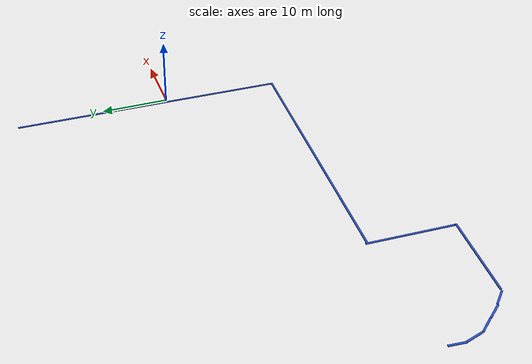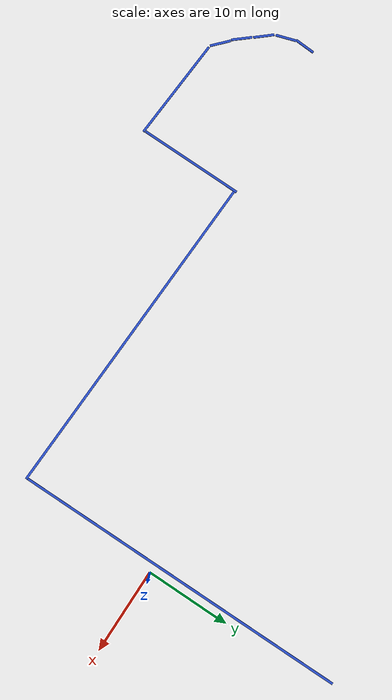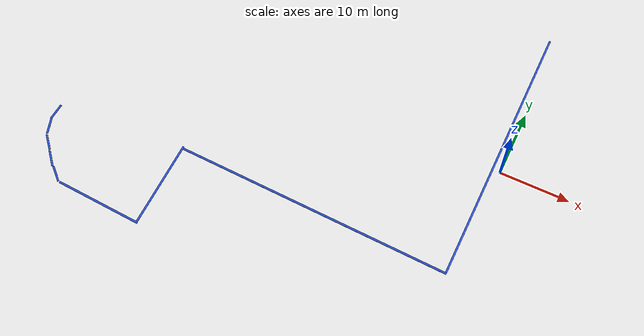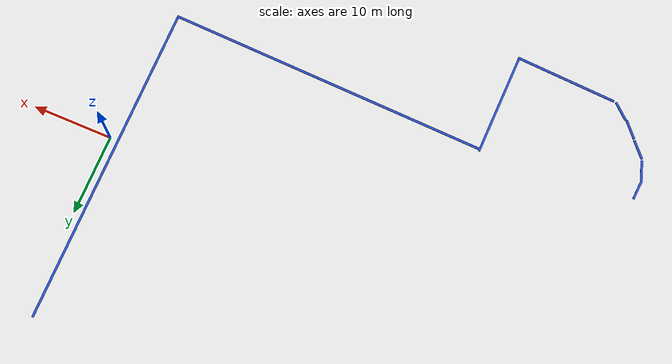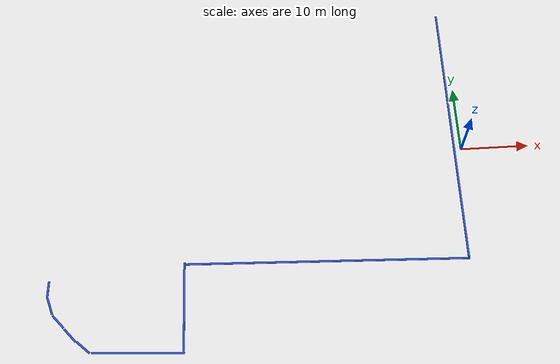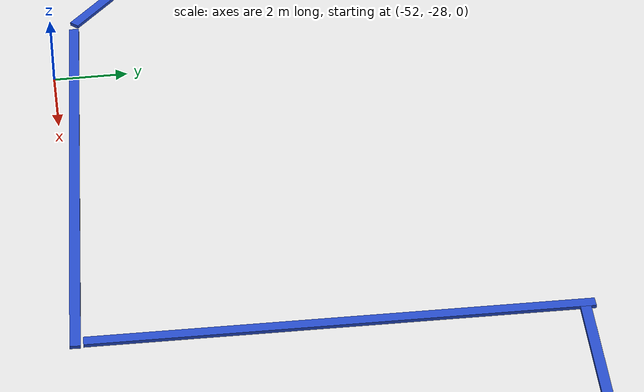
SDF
<?xml version='1.0'?>
<sdf version='1.6'>
  <model name='blue_line'>
    <link name='link_0'>
      <pose frame=''>-1.09049 3.04456 0.467976 1e-06 1e-06 2e-06</pose>
      <inertial>
        <mass>0.993179</mass>
        <inertia>
          <ixx>131.321</ixx>
          <ixy>0</ixy>
          <ixz>0</ixz>
          <iyy>0.0066551</iyy>
          <iyz>0</iyz>
          <izz>131.326</izz>
        </inertia>
        <pose frame=''>0 0 0 0 -0 0</pose>
      </inertial>
      <self_collide>0</self_collide>
      <kinematic>0</kinematic>
      <visual name='visual'>
        <pose frame=''>0 0 0 0 -0 0</pose>
        <geometry>
          <box>
            <size>0.267837 39.8329 0.092933</size>
          </box>
        </geometry>
        <material>
          <lighting>1</lighting>
          <script>
            <uri>file://media/materials/scripts/gazebo.material</uri>
            <name>Gazebo/Blue</name>
          </script>
          <ambient>0 0 1 1</ambient>
          <diffuse>0 0 1 1</diffuse>
          <specular>0.01 0.01 0.01 1</specular>
          <emissive>0 0 0 1</emissive>
          <shader type='pixel'>
            <normal_map>__default__</normal_map>
          </shader>
        </material>
        <cast_shadows>1</cast_shadows>
        <transparency>0</transparency>
      </visual>
      <collision name='collision'>
        <laser_retro>0</laser_retro>
        <max_contacts>10</max_contacts>
        <pose frame=''>0 0 0 0 -0 0</pose>
        <geometry>
          <box>
            <size>0.267837 39.8329 0.092933</size>
          </box>
        </geometry>
        <surface>
          <friction>
            <ode>
              <mu>1</mu>
              <mu2>1</mu2>
              <fdir1>0 0 0</fdir1>
              <slip1>0</slip1>
              <slip2>0</slip2>
            </ode>
            <torsional>
              <coefficient>1</coefficient>
              <patch_radius>0</patch_radius>
              <surface_radius>0</surface_radius>
              <use_patch_radius>1</use_patch_radius>
              <ode>
                <slip>0</slip>
              </ode>
            </torsional>
          </friction>
          <bounce>
            <restitution_coefficient>0</restitution_coefficient>
            <threshold>1e+06</threshold>
          </bounce>
          <contact>
            <collide_without_contact>0</collide_without_contact>
            <collide_without_contact_bitmask>1</collide_without_contact_bitmask>
            <collide_bitmask>1</collide_bitmask>
            <ode>
              <soft_cfm>0</soft_cfm>
              <soft_erp>0.2</soft_erp>
              <kp>1e+13</kp>
              <kd>1</kd>
              <max_vel>0.01</max_vel>
              <min_depth>0</min_depth>
            </ode>
            <bullet>
              <split_impulse>1</split_impulse>
              <split_impulse_penetration_threshold>-0.01</split_impulse_penetration_threshold>
              <soft_cfm>0</soft_cfm>
              <soft_erp>0.2</soft_erp>
              <kp>1e+13</kp>
              <kd>1</kd>
            </bullet>
          </contact>
        </surface>
      </collision>
    </link>
    <link name='link_0_clone'>
      <pose frame=''>-20.8753 -16.2989 0.467985 2e-06 -2e-06 1.53462</pose>
      <inertial>
        <mass>0.993179</mass>
        <inertia>
          <ixx>131.321</ixx>
          <ixy>0</ixy>
          <ixz>0</ixz>
          <iyy>0.0066551</iyy>
          <iyz>0</iyz>
          <izz>131.326</izz>
        </inertia>
        <pose frame=''>0 0 0 0 -0 0</pose>
      </inertial>
      <self_collide>0</self_collide>
      <kinematic>0</kinematic>
      <visual name='visual'>
        <pose frame=''>0 0 0 0 -0 0</pose>
        <geometry>
          <box>
            <size>0.267837 39.8329 0.092933</size>
          </box>
        </geometry>
        <material>
          <lighting>1</lighting>
          <script>
            <uri>file://media/materials/scripts/gazebo.material</uri>
            <name>Gazebo/Blue</name>
          </script>
          <ambient>0 0 1 1</ambient>
          <diffuse>0 0 1 1</diffuse>
          <specular>0.01 0.01 0.01 1</specular>
          <emissive>0 0 0 1</emissive>
          <shader type='vertex'>
            <normal_map>__default__</normal_map>
          </shader>
        </material>
        <cast_shadows>1</cast_shadows>
        <transparency>0</transparency>
      </visual>
      <collision name='collision'>
        <laser_retro>0</laser_retro>
        <max_contacts>10</max_contacts>
        <pose frame=''>0 0 0 0 -0 0</pose>
        <geometry>
          <box>
            <size>0.267837 39.8329 0.092933</size>
          </box>
        </geometry>
        <surface>
          <friction>
            <ode>
              <mu>1</mu>
              <mu2>1</mu2>
              <fdir1>0 0 0</fdir1>
              <slip1>0</slip1>
              <slip2>0</slip2>
            </ode>
            <torsional>
              <coefficient>1</coefficient>
              <patch_radius>0</patch_radius>
              <surface_radius>0</surface_radius>
              <use_patch_radius>1</use_patch_radius>
              <ode>
                <slip>0</slip>
              </ode>
            </torsional>
          </friction>
          <bounce>
            <restitution_coefficient>0</restitution_coefficient>
            <threshold>1e+06</threshold>
          </bounce>
          <contact>
            <collide_without_contact>0</collide_without_contact>
            <collide_without_contact_bitmask>1</collide_without_contact_bitmask>
            <collide_bitmask>1</collide_bitmask>
            <ode>
              <soft_cfm>0</soft_cfm>
              <soft_erp>0.2</soft_erp>
              <kp>1e+13</kp>
              <kd>1</kd>
              <max_vel>0.01</max_vel>
              <min_depth>0</min_depth>
            </ode>
            <bullet>
              <split_impulse>1</split_impulse>
              <split_impulse_penetration_threshold>-0.01</split_impulse_penetration_threshold>
              <soft_cfm>0</soft_cfm>
              <soft_erp>0.2</soft_erp>
              <kp>1e+13</kp>
              <kd>1</kd>
            </bullet>
          </contact>
        </surface>
      </collision>
    </link>
    <link name='link_0_clone_clone'>
      <pose frame=''>-41.0206 -21.5954 0.468021 -3e-06 -3e-06 3.12356</pose>
      <inertial>
        <mass>0.313472</mass>
        <inertia>
          <ixx>4.12928</ixx>
          <ixy>0</ixy>
          <ixz>0</ixz>
          <iyy>0.00210052</iyy>
          <iyz>0</iyz>
          <izz>4.13086</izz>
        </inertia>
        <pose frame=''>0 0 0 0 -0 0</pose>
      </inertial>
      <self_collide>0</self_collide>
      <kinematic>0</kinematic>
      <visual name='visual'>
        <pose frame=''>0 0 0 0 -0 0</pose>
        <geometry>
          <box>
            <size>0.267837 12.5723 0.092933</size>
          </box>
        </geometry>
        <material>
          <lighting>1</lighting>
          <script>
            <uri>file://media/materials/scripts/gazebo.material</uri>
            <name>Gazebo/Blue</name>
          </script>
          <ambient>0 0 1 1</ambient>
          <diffuse>0 0 1 1</diffuse>
          <specular>0.01 0.01 0.01 1</specular>
          <emissive>0 0 0 1</emissive>
          <shader type='vertex'>
            <normal_map>__default__</normal_map>
          </shader>
        </material>
        <cast_shadows>1</cast_shadows>
        <transparency>0</transparency>
      </visual>
      <collision name='collision'>
        <laser_retro>0</laser_retro>
        <max_contacts>10</max_contacts>
        <pose frame=''>0 0 0 0 -0 0</pose>
        <geometry>
          <box>
            <size>0.267837 12.5723 0.092933</size>
          </box>
        </geometry>
        <surface>
          <friction>
            <ode>
              <mu>1</mu>
              <mu2>1</mu2>
              <fdir1>0 0 0</fdir1>
              <slip1>0</slip1>
              <slip2>0</slip2>
            </ode>
            <torsional>
              <coefficient>1</coefficient>
              <patch_radius>0</patch_radius>
              <surface_radius>0</surface_radius>
              <use_patch_radius>1</use_patch_radius>
              <ode>
                <slip>0</slip>
              </ode>
            </torsional>
          </friction>
          <bounce>
            <restitution_coefficient>0</restitution_coefficient>
            <threshold>1e+06</threshold>
          </bounce>
          <contact>
            <collide_without_contact>0</collide_without_contact>
            <collide_without_contact_bitmask>1</collide_without_contact_bitmask>
            <collide_bitmask>1</collide_bitmask>
            <ode>
              <soft_cfm>0</soft_cfm>
              <soft_erp>0.2</soft_erp>
              <kp>1e+13</kp>
              <kd>1</kd>
              <max_vel>0.01</max_vel>
              <min_depth>0</min_depth>
            </ode>
            <bullet>
              <split_impulse>1</split_impulse>
              <split_impulse_penetration_threshold>-0.01</split_impulse_penetration_threshold>
              <soft_cfm>0</soft_cfm>
              <soft_erp>0.2</soft_erp>
              <kp>1e+13</kp>
              <kd>1</kd>
            </bullet>
          </contact>
        </surface>
      </collision>
    </link>
    <link name='link_0_clone_clone_clone'>
      <pose frame=''>-47.2558 -27.7176 0.468091 5e-06 -4e-06 1.51176</pose>
      <inertial>
        <mass>0.313472</mass>
        <inertia>
          <ixx>4.12928</ixx>
          <ixy>0</ixy>
          <ixz>0</ixz>
          <iyy>0.00210052</iyy>
          <iyz>0</iyz>
          <izz>4.13086</izz>
        </inertia>
        <pose frame=''>0 0 0 0 -0 0</pose>
      </inertial>
      <self_collide>0</self_collide>
      <kinematic>0</kinematic>
      <visual name='visual'>
        <pose frame=''>0 0 0 0 -0 0</pose>
        <geometry>
          <box>
            <size>0.267837 12.5723 0.092933</size>
          </box>
        </geometry>
        <material>
          <lighting>1</lighting>
          <script>
            <uri>file://media/materials/scripts/gazebo.material</uri>
            <name>Gazebo/Blue</name>
          </script>
          <ambient>0 0 1 1</ambient>
          <diffuse>0 0 1 1</diffuse>
          <specular>0.01 0.01 0.01 1</specular>
          <emissive>0 0 0 1</emissive>
          <shader type='vertex'>
            <normal_map>__default__</normal_map>
          </shader>
        </material>
        <cast_shadows>1</cast_shadows>
        <transparency>0</transparency>
      </visual>
      <collision name='collision'>
        <laser_retro>0</laser_retro>
        <max_contacts>10</max_contacts>
        <pose frame=''>0 0 0 0 -0 0</pose>
        <geometry>
          <box>
            <size>0.267837 12.5723 0.092933</size>
          </box>
        </geometry>
        <surface>
          <friction>
            <ode>
              <mu>1</mu>
              <mu2>1</mu2>
              <fdir1>0 0 0</fdir1>
              <slip1>0</slip1>
              <slip2>0</slip2>
            </ode>
            <torsional>
              <coefficient>1</coefficient>
              <patch_radius>0</patch_radius>
              <surface_radius>0</surface_radius>
              <use_patch_radius>1</use_patch_radius>
              <ode>
                <slip>0</slip>
              </ode>
            </torsional>
          </friction>
          <bounce>
            <restitution_coefficient>0</restitution_coefficient>
            <threshold>1e+06</threshold>
          </bounce>
          <contact>
            <collide_without_contact>0</collide_without_contact>
            <collide_without_contact_bitmask>1</collide_without_contact_bitmask>
            <collide_bitmask>1</collide_bitmask>
            <ode>
              <soft_cfm>0</soft_cfm>
              <soft_erp>0.2</soft_erp>
              <kp>1e+13</kp>
              <kd>1</kd>
              <max_vel>0.01</max_vel>
              <min_depth>0</min_depth>
            </ode>
            <bullet>
              <split_impulse>1</split_impulse>
              <split_impulse_penetration_threshold>-0.01</split_impulse_penetration_threshold>
              <soft_cfm>0</soft_cfm>
              <soft_erp>0.2</soft_erp>
              <kp>1e+13</kp>
              <kd>1</kd>
            </bullet>
          </contact>
        </surface>
      </collision>
    </link>
    <link name='link_0_clone_clone_clone_clone'>
      <pose frame=''>-54.6615 -26.4997 0.468131 8e-06 -0 0.826983</pose>
      <inertial>
        <mass>0.0609913</mass>
        <inertia>
          <ixx>0.0304633</ixx>
          <ixy>0</ixy>
          <ixz>0</ixz>
          <iyy>0.00040869</iyy>
          <iyz>0</iyz>
          <izz>0.0307708</izz>
        </inertia>
        <pose frame=''>0 0 0 0 -0 0</pose>
      </inertial>
      <self_collide>0</self_collide>
      <kinematic>0</kinematic>
      <visual name='visual'>
        <pose frame=''>0 0 0 0 -0 0</pose>
        <geometry>
          <box>
            <size>0.267837 2.44616 0.092933</size>
          </box>
        </geometry>
        <material>
          <lighting>1</lighting>
          <script>
            <uri>file://media/materials/scripts/gazebo.material</uri>
            <name>Gazebo/Blue</name>
          </script>
          <ambient>0 0 1 1</ambient>
          <diffuse>0 0 1 1</diffuse>
          <specular>0.01 0.01 0.01 1</specular>
          <emissive>0 0 0 1</emissive>
          <shader type='vertex'>
            <normal_map>__default__</normal_map>
          </shader>
        </material>
        <cast_shadows>1</cast_shadows>
        <transparency>0</transparency>
      </visual>
      <collision name='collision'>
        <laser_retro>0</laser_retro>
        <max_contacts>10</max_contacts>
        <pose frame=''>0 0 0 0 -0 0</pose>
        <geometry>
          <box>
            <size>0.267837 2.44616 0.092933</size>
          </box>
        </geometry>
        <surface>
          <friction>
            <ode>
              <mu>1</mu>
              <mu2>1</mu2>
              <fdir1>0 0 0</fdir1>
              <slip1>0</slip1>
              <slip2>0</slip2>
            </ode>
            <torsional>
              <coefficient>1</coefficient>
              <patch_radius>0</patch_radius>
              <surface_radius>0</surface_radius>
              <use_patch_radius>1</use_patch_radius>
              <ode>
                <slip>0</slip>
              </ode>
            </torsional>
          </friction>
          <bounce>
            <restitution_coefficient>0</restitution_coefficient>
            <threshold>1e+06</threshold>
          </bounce>
          <contact>
            <collide_without_contact>0</collide_without_contact>
            <collide_without_contact_bitmask>1</collide_without_contact_bitmask>
            <collide_bitmask>1</collide_bitmask>
            <ode>
              <soft_cfm>0</soft_cfm>
              <soft_erp>0.2</soft_erp>
              <kp>1e+13</kp>
              <kd>1</kd>
              <max_vel>0.01</max_vel>
              <min_depth>0</min_depth>
            </ode>
            <bullet>
              <split_impulse>1</split_impulse>
              <split_impulse_penetration_threshold>-0.01</split_impulse_penetration_threshold>
              <soft_cfm>0</soft_cfm>
              <soft_erp>0.2</soft_erp>
              <kp>1e+13</kp>
              <kd>1</kd>
            </bullet>
          </contact>
        </surface>
      </collision>
    </link>
    <link name='link_0_clone_clone_clone_clone_clone'>
      <pose frame=''>-56.4885 -24.7587 0.468176 1e-05 1e-06 0.707339</pose>
      <inertial>
        <mass>0.0609913</mass>
        <inertia>
          <ixx>0.0304633</ixx>
          <ixy>0</ixy>
          <ixz>0</ixz>
          <iyy>0.00040869</iyy>
          <iyz>0</iyz>
          <izz>0.0307708</izz>
        </inertia>
        <pose frame=''>0 0 0 0 -0 0</pose>
      </inertial>
      <self_collide>0</self_collide>
      <kinematic>0</kinematic>
      <visual name='visual'>
        <pose frame=''>0 0 0 0 -0 0</pose>
        <geometry>
          <box>
            <size>0.267837 2.44616 0.092933</size>
          </box>
        </geometry>
        <material>
          <lighting>1</lighting>
          <script>
            <uri>file://media/materials/scripts/gazebo.material</uri>
            <name>Gazebo/Blue</name>
          </script>
          <ambient>0 0 1 1</ambient>
          <diffuse>0 0 1 1</diffuse>
          <specular>0.01 0.01 0.01 1</specular>
          <emissive>0 0 0 1</emissive>
          <shader type='vertex'>
            <normal_map>__default__</normal_map>
          </shader>
        </material>
        <cast_shadows>1</cast_shadows>
        <transparency>0</transparency>
      </visual>
      <collision name='collision'>
        <laser_retro>0</laser_retro>
        <max_contacts>10</max_contacts>
        <pose frame=''>0 0 0 0 -0 0</pose>
        <geometry>
          <box>
            <size>0.267837 2.44616 0.092933</size>
          </box>
        </geometry>
        <surface>
          <friction>
            <ode>
              <mu>1</mu>
              <mu2>1</mu2>
              <fdir1>0 0 0</fdir1>
              <slip1>0</slip1>
              <slip2>0</slip2>
            </ode>
            <torsional>
              <coefficient>1</coefficient>
              <patch_radius>0</patch_radius>
              <surface_radius>0</surface_radius>
              <use_patch_radius>1</use_patch_radius>
              <ode>
                <slip>0</slip>
              </ode>
            </torsional>
          </friction>
          <bounce>
            <restitution_coefficient>0</restitution_coefficient>
            <threshold>1e+06</threshold>
          </bounce>
          <contact>
            <collide_without_contact>0</collide_without_contact>
            <collide_without_contact_bitmask>1</collide_without_contact_bitmask>
            <collide_bitmask>1</collide_bitmask>
            <ode>
              <soft_cfm>0</soft_cfm>
              <soft_erp>0.2</soft_erp>
              <kp>1e+13</kp>
              <kd>1</kd>
              <max_vel>0.01</max_vel>
              <min_depth>0</min_depth>
            </ode>
            <bullet>
              <split_impulse>1</split_impulse>
              <split_impulse_penetration_threshold>-0.01</split_impulse_penetration_threshold>
              <soft_cfm>0</soft_cfm>
              <soft_erp>0.2</soft_erp>
              <kp>1e+13</kp>
              <kd>1</kd>
            </bullet>
          </contact>
        </surface>
      </collision>
    </link>
    <link name='link_0_clone_clone_clone_clone_clone_0'>
      <pose frame=''>-58.1668 -22.7682 0.468181 1e-05 1e-06 0.717187</pose>
      <inertial>
        <mass>0.0609913</mass>
        <inertia>
          <ixx>0.0304633</ixx>
          <ixy>0</ixy>
          <ixz>0</ixz>
          <iyy>0.00040869</iyy>
          <iyz>0</iyz>
          <izz>0.0307708</izz>
        </inertia>
        <pose frame=''>0 0 0 0 -0 0</pose>
      </inertial>
      <self_collide>0</self_collide>
      <kinematic>0</kinematic>
      <visual name='visual'>
        <pose frame=''>0 0 0 0 -0 0</pose>
        <geometry>
          <box>
            <size>0.267837 2.44616 0.092933</size>
          </box>
        </geometry>
        <material>
          <lighting>1</lighting>
          <script>
            <uri>file://media/materials/scripts/gazebo.material</uri>
            <name>Gazebo/Blue</name>
          </script>
          <ambient>0 0 1 1</ambient>
          <diffuse>0 0 1 1</diffuse>
          <specular>0.01 0.01 0.01 1</specular>
          <emissive>0 0 0 1</emissive>
          <shader type='vertex'>
            <normal_map>__default__</normal_map>
          </shader>
        </material>
        <cast_shadows>1</cast_shadows>
        <transparency>0</transparency>
      </visual>
      <collision name='collision'>
        <laser_retro>0</laser_retro>
        <max_contacts>10</max_contacts>
        <pose frame=''>0 0 0 0 -0 0</pose>
        <geometry>
          <box>
            <size>0.267837 2.44616 0.092933</size>
          </box>
        </geometry>
        <surface>
          <friction>
            <ode>
              <mu>1</mu>
              <mu2>1</mu2>
              <fdir1>0 0 0</fdir1>
              <slip1>0</slip1>
              <slip2>0</slip2>
            </ode>
            <torsional>
              <coefficient>1</coefficient>
              <patch_radius>0</patch_radius>
              <surface_radius>0</surface_radius>
              <use_patch_radius>1</use_patch_radius>
              <ode>
                <slip>0</slip>
              </ode>
            </torsional>
          </friction>
          <bounce>
            <restitution_coefficient>0</restitution_coefficient>
            <threshold>1e+06</threshold>
          </bounce>
          <contact>
            <collide_without_contact>0</collide_without_contact>
            <collide_without_contact_bitmask>1</collide_without_contact_bitmask>
            <collide_bitmask>1</collide_bitmask>
            <ode>
              <soft_cfm>0</soft_cfm>
              <soft_erp>0.2</soft_erp>
              <kp>1e+13</kp>
              <kd>1</kd>
              <max_vel>0.01</max_vel>
              <min_depth>0</min_depth>
            </ode>
            <bullet>
              <split_impulse>1</split_impulse>
              <split_impulse_penetration_threshold>-0.01</split_impulse_penetration_threshold>
              <soft_cfm>0</soft_cfm>
              <soft_erp>0.2</soft_erp>
              <kp>1e+13</kp>
              <kd>1</kd>
            </bullet>
          </contact>
        </surface>
      </collision>
    </link>
    <link name='link_0_clone_clone_clone_clone_clone_1'>
      <pose frame=''>-59.393 -20.512 0.468186 9e-06 5e-06 0.299983</pose>
      <inertial>
        <mass>0.0609913</mass>
        <inertia>
          <ixx>0.0304633</ixx>
          <ixy>0</ixy>
          <ixz>0</ixz>
          <iyy>0.00040869</iyy>
          <iyz>0</iyz>
          <izz>0.0307708</izz>
        </inertia>
        <pose frame=''>0 0 0 0 -0 0</pose>
      </inertial>
      <self_collide>0</self_collide>
      <kinematic>0</kinematic>
      <visual name='visual'>
        <pose frame=''>0 0 0 0 -0 0</pose>
        <geometry>
          <box>
            <size>0.267837 2.44616 0.092933</size>
          </box>
        </geometry>
        <material>
          <lighting>1</lighting>
          <script>
            <uri>file://media/materials/scripts/gazebo.material</uri>
            <name>Gazebo/Blue</name>
          </script>
          <ambient>0 0 1 1</ambient>
          <diffuse>0 0 1 1</diffuse>
          <specular>0.01 0.01 0.01 1</specular>
          <emissive>0 0 0 1</emissive>
          <shader type='vertex'>
            <normal_map>__default__</normal_map>
          </shader>
        </material>
        <cast_shadows>1</cast_shadows>
        <transparency>0</transparency>
      </visual>
      <collision name='collision'>
        <laser_retro>0</laser_retro>
        <max_contacts>10</max_contacts>
        <pose frame=''>0 0 0 0 -0 0</pose>
        <geometry>
          <box>
            <size>0.267837 2.44616 0.092933</size>
          </box>
        </geometry>
        <surface>
          <friction>
            <ode>
              <mu>1</mu>
              <mu2>1</mu2>
              <fdir1>0 0 0</fdir1>
              <slip1>0</slip1>
              <slip2>0</slip2>
            </ode>
            <torsional>
              <coefficient>1</coefficient>
              <patch_radius>0</patch_radius>
              <surface_radius>0</surface_radius>
              <use_patch_radius>1</use_patch_radius>
              <ode>
                <slip>0</slip>
              </ode>
            </torsional>
          </friction>
          <bounce>
            <restitution_coefficient>0</restitution_coefficient>
            <threshold>1e+06</threshold>
          </bounce>
          <contact>
            <collide_without_contact>0</collide_without_contact>
            <collide_without_contact_bitmask>1</collide_without_contact_bitmask>
            <collide_bitmask>1</collide_bitmask>
            <ode>
              <soft_cfm>0</soft_cfm>
              <soft_erp>0.2</soft_erp>
              <kp>1e+13</kp>
              <kd>1</kd>
              <max_vel>0.01</max_vel>
              <min_depth>0</min_depth>
            </ode>
            <bullet>
              <split_impulse>1</split_impulse>
              <split_impulse_penetration_threshold>-0.01</split_impulse_penetration_threshold>
              <soft_cfm>0</soft_cfm>
              <soft_erp>0.2</soft_erp>
              <kp>1e+13</kp>
              <kd>1</kd>
            </bullet>
          </contact>
        </surface>
      </collision>
    </link>
    <link name='link_0_clone_clone_clone_clone_clone_2'>
      <pose frame=''>-59.7399 -18.1441 0.46819 6e-06 8e-06 -0.069557</pose>
      <inertial>
        <mass>0.0609913</mass>
        <inertia>
          <ixx>0.0304633</ixx>
          <ixy>0</ixy>
          <ixz>0</ixz>
          <iyy>0.00040869</iyy>
          <iyz>0</iyz>
          <izz>0.0307708</izz>
        </inertia>
        <pose frame=''>0 0 0 0 -0 0</pose>
      </inertial>
      <self_collide>0</self_collide>
      <kinematic>0</kinematic>
      <visual name='visual'>
        <pose frame=''>0 0 0 0 -0 0</pose>
        <geometry>
          <box>
            <size>0.267837 2.44616 0.092933</size>
          </box>
        </geometry>
        <material>
          <lighting>1</lighting>
          <script>
            <uri>file://media/materials/scripts/gazebo.material</uri>
            <name>Gazebo/Blue</name>
          </script>
          <ambient>0 0 1 1</ambient>
          <diffuse>0 0 1 1</diffuse>
          <specular>0.01 0.01 0.01 1</specular>
          <emissive>0 0 0 1</emissive>
          <shader type='vertex'>
            <normal_map>__default__</normal_map>
          </shader>
        </material>
        <cast_shadows>1</cast_shadows>
        <transparency>0</transparency>
      </visual>
      <collision name='collision'>
        <laser_retro>0</laser_retro>
        <max_contacts>10</max_contacts>
        <pose frame=''>0 0 0 0 -0 0</pose>
        <geometry>
          <box>
            <size>0.267837 2.44616 0.092933</size>
          </box>
        </geometry>
        <surface>
          <friction>
            <ode>
              <mu>1</mu>
              <mu2>1</mu2>
              <fdir1>0 0 0</fdir1>
              <slip1>0</slip1>
              <slip2>0</slip2>
            </ode>
            <torsional>
              <coefficient>1</coefficient>
              <patch_radius>0</patch_radius>
              <surface_radius>0</surface_radius>
              <use_patch_radius>1</use_patch_radius>
              <ode>
                <slip>0</slip>
              </ode>
            </torsional>
          </friction>
          <bounce>
            <restitution_coefficient>0</restitution_coefficient>
            <threshold>1e+06</threshold>
          </bounce>
          <contact>
            <collide_without_contact>0</collide_without_contact>
            <collide_without_contact_bitmask>1</collide_without_contact_bitmask>
            <collide_bitmask>1</collide_bitmask>
            <ode>
              <soft_cfm>0</soft_cfm>
              <soft_erp>0.2</soft_erp>
              <kp>1e+13</kp>
              <kd>1</kd>
              <max_vel>0.01</max_vel>
              <min_depth>0</min_depth>
            </ode>
            <bullet>
              <split_impulse>1</split_impulse>
              <split_impulse_penetration_threshold>-0.01</split_impulse_penetration_threshold>
              <soft_cfm>0</soft_cfm>
              <soft_erp>0.2</soft_erp>
              <kp>1e+13</kp>
              <kd>1</kd>
            </bullet>
          </contact>
        </surface>
      </collision>
    </link>
    <static>0</static>
    <allow_auto_disable>1</allow_auto_disable>
  </model>
</sdf>
